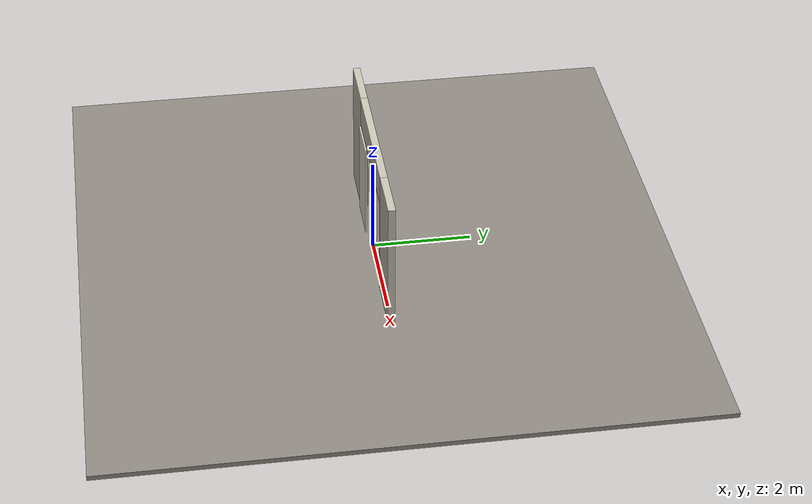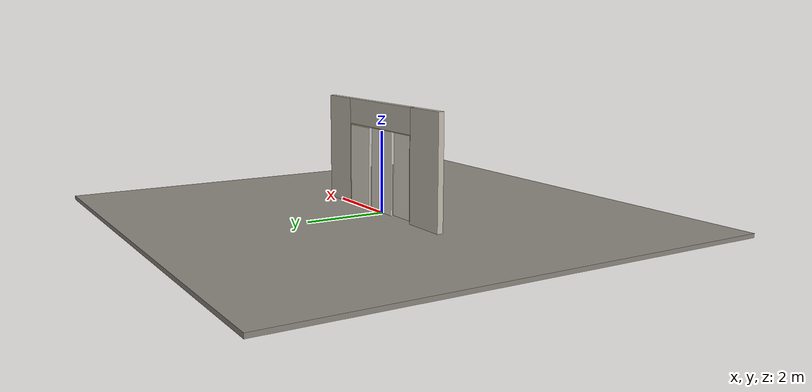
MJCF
<?xml version="1.0" ?>
<mujoco model="db0649_sliding_bypass_minimal">
  <compiler angle="radian" meshdir="../../hardware" texturedir="../../textures" autolimits="true" inertiafromgeom="false"/>
  <option timestep="0.002" integrator="implicitfast" cone="elliptic" impratio="10" noslip_iterations="3">
    <flag multiccd="enable"/>
  </option>
  <size memory="16M"/>
  <default>
    <geom condim="4" solref="0.005 1" solimp="0.95 0.99 0.001"/>
    <joint solreflimit="0.005 1" solimplimit="0.95 0.99 0.001"/>
    <tendon solreflimit="0.005 1"/>
    <equality solref="0.002 1"/>
  </default>
  <visual>
    <headlight ambient="0.4 0.4 0.4" diffuse="0.7 0.7 0.7" specular="0.2 0.2 0.2"/>
    <quality shadowsize="4096"/>
    <map znear="0.01" zfar="60"/>
  </visual>
  <asset>
    <material name="mat_floor" rgba="0.55 0.53 0.5 1" specular="0.2" shininess="0.15" reflectance="0"/>
    <material name="mat_wall" rgba="0.78 0.76 0.7 1" specular="0.2" shininess="0.1" reflectance="0"/>
    <material name="mat_frame" rgba="0.82 0.7 0.5 1" specular="0.2" shininess="0.45" reflectance="0"/>
    <material name="mat_track" rgba="0.8 0.81 0.83 1" specular="0.8" shininess="0.6" reflectance="0.4"/>
    <material name="mat_leaf_0" rgba="0.9 0.88 0.82 1" specular="0.2" shininess="0.41" reflectance="0"/>
    <material name="mat_roller" rgba="0.65 0.66 0.68 1" specular="0.74" shininess="0.5" reflectance="0.36"/>
    <material name="mat_op_nickel_satin" rgba="0.72 0.7 0.66 1" specular="0.8" shininess="0.65" reflectance="0.4"/>
    <material name="mat_leaf_1" rgba="0.9 0.88 0.82 1" specular="0.2" shininess="0.41" reflectance="0"/>
    <material name="mat_leaf_2" rgba="0.9 0.88 0.82 1" specular="0.2" shininess="0.41" reflectance="0"/>
    <material name="mat_hook" rgba="0.75 0.76 0.77 1" specular="0.8" shininess="0.65" reflectance="0.4"/>
    <texture name="skybox" type="skybox" builtin="gradient" rgb1="0.6 0.7 0.85" rgb2="0.9 0.92 0.95" width="256" height="256"/>
  </asset>
  <worldbody>
    <light name="sun" pos="1.5 -2.5 4" dir="-0.3 0.5 -0.8" directional="true" diffuse="0.8 0.8 0.8" specular="0.3 0.3 0.3" castshadow="true"/>
    <light name="fill" pos="-1.5 2.5 3" dir="0.3 -0.5 -0.7" directional="true" diffuse="0.35 0.35 0.4" castshadow="false"/>
    <camera name="robot_view" pos="0 -3.14875 1.90765" xyaxes="1 0 0 0 0.26963 0.962964" fovy="52"/>
    <camera name="far_view" pos="0 3.14875 1.90765" xyaxes="-1 0 0 0 -0.26963 0.962964" fovy="52"/>
    <camera name="iso" pos="2.39305 -2.64495 2.41145" xyaxes="0.741536 0.670913 0 -0.242917 0.268487 0.932151" fovy="46"/>
    <camera name="detail_handle" pos="-1.073 -0.9025 1.28" xyaxes="0.97561 0.219512 0 -0.070934 0.315262 0.94635" fovy="38"/>
    <geom name="floor" type="box" size="6 6 0.05" pos="0 0 -0.05" material="mat_floor" group="0" contype="1" conaffinity="1" friction="0.8 0.005 0.0001" density="2400"/>
    <geom name="wall_left" type="box" size="0.5675 0.0725 1.35" pos="-1.9325 0 1.35" material="mat_wall" group="0" contype="1" conaffinity="1" friction="0.6 0.005 0.0001" density="800"/>
    <geom name="wall_right" type="box" size="0.5375 0.0725 1.35" pos="1.9625 0 1.35" material="mat_wall" group="0" contype="1" conaffinity="1" friction="0.6 0.005 0.0001" density="800"/>
    <geom name="wall_header" type="box" size="1.395 0.0725 0.3145" pos="0.03 0 2.3855" material="mat_wall" group="0" contype="1" conaffinity="1" friction="0.6 0.005 0.0001" density="800"/>
    <geom name="jamb_l" type="box" size="0.0095 0.0725 1.026" pos="-1.3555 0 1.026" material="mat_frame" group="0" contype="1" conaffinity="1" friction="0.6 0.005 0.0001" density="300"/>
    <geom name="jamb_head" type="box" size="1.365 0.0725 0.0095" pos="0 0 2.0615" material="mat_frame" group="0" contype="1" conaffinity="1" friction="0.6 0.005 0.0001" density="300"/>
    <geom name="jamb_latch_0" type="box" size="0.0395 0.0725 1.026" pos="1.3855 0 1.026" material="mat_frame" group="0" contype="1" conaffinity="1" friction="0.6 0.005 0.0001" density="300"/>
    <site name="approach_point" pos="0 -1.5 0" quat="1 0 0 0" size="0.05" rgba="0.2 0.9 0.2 0.5" group="4"/>
    <site name="goal_point" pos="0 1.5 0" quat="1 0 0 0" size="0.05" rgba="0.2 0.9 0.2 0.5" group="4"/>
    <site name="door_plane_center" pos="0 0 1.026" quat="1 0 0 0" size="0.02" rgba="0.2 0.9 0.2 0.5" group="4"/>
    <body name="leaf_0" pos="-0.886 -0.085 0">
      <inertial pos="-0.000137 -0.000007 1.02799" mass="13.442381" quat="0.499995 0.500012 -0.499987 0.500006" diaginertia="0.937510292 4.624979284 5.559742864"/>
      <joint name="leaf_0_slide" type="slide" axis="1 0 0" limited="true" range="0 1.752" damping="2.678786" frictionloss="2.076864" armature="0.5"/>
      <geom name="leaf_0_slab" type="box" size="0.457 0.0175 1.016" pos="0 0 1.028" material="mat_leaf_0" group="0" contype="1" conaffinity="1" friction="0.35 0.005 0.0001" density="1"/>
      <geom name="leaf_0_pull_n" type="box" size="0.025 0.0005 0.05" pos="-0.367 -0.018 1" material="mat_op_nickel_satin" group="1" contype="0" conaffinity="0" density="1000"/>
      <site name="leaf_0_pull_grip_n" pos="-0.367 -0.0175 1" quat="1 0 0 0" size="0.012" rgba="0.2 0.9 0.2 0.5" group="4"/>
      <site name="leaf_0_edge_mid" pos="-0.457 0 1.028" quat="1 0 0 0" size="0.02" rgba="0.2 0.9 0.2 0.5" group="4"/>
    </body>
    <body name="leaf_1" pos="0 0 0">
      <inertial pos="0.000137 -0.000007 1.02799" mass="13.442381" quat="0.500006 0.499987 -0.500012 0.499995" diaginertia="0.937510292 4.624979284 5.559742864"/>
      <joint name="leaf_1_slide" type="slide" axis="-1 0 0" limited="true" range="0 0.866" damping="2.678786" frictionloss="2.076864" armature="0.5"/>
      <geom name="leaf_1_slab" type="box" size="0.457 0.0175 1.016" pos="0 0 1.028" material="mat_leaf_1" group="0" contype="1" conaffinity="1" friction="0.35 0.005 0.0001" density="1"/>
      <geom name="leaf_1_pull_n" type="box" size="0.025 0.0005 0.05" pos="0.367 -0.018 1" material="mat_op_nickel_satin" group="1" contype="0" conaffinity="0" density="1000"/>
      <site name="leaf_1_pull_grip_n" pos="0.367 -0.0175 1" quat="1 0 0 0" size="0.012" rgba="0.2 0.9 0.2 0.5" group="4"/>
      <site name="leaf_1_edge_mid" pos="0.457 0 1.028" quat="1 0 0 0" size="0.02" rgba="0.2 0.9 0.2 0.5" group="4"/>
    </body>
    <body name="leaf_2" pos="0.886 0.085 0">
      <inertial pos="-0.000137 -0.000007 1.02799" mass="13.442381" quat="0.499995 0.500012 -0.499987 0.500006" diaginertia="0.937510292 4.624979284 5.559742864"/>
      <joint name="leaf_2_slide" type="slide" axis="-1 0 0" limited="true" range="0 1.752" damping="2.678786" frictionloss="2.076864" armature="0.5"/>
      <geom name="leaf_2_slab" type="box" size="0.457 0.0175 1.016" pos="0 0 1.028" material="mat_leaf_2" group="0" contype="1" conaffinity="1" friction="0.35 0.005 0.0001" density="1"/>
      <geom name="leaf_2_pull_n" type="box" size="0.025 0.0005 0.05" pos="-0.367 -0.018 1" material="mat_op_nickel_satin" group="1" contype="0" conaffinity="0" density="1000"/>
      <site name="leaf_2_pull_grip_n" pos="-0.367 -0.0175 1" quat="1 0 0 0" size="0.012" rgba="0.2 0.9 0.2 0.5" group="4"/>
      <site name="leaf_2_edge_mid" pos="-0.457 0 1.028" quat="1 0 0 0" size="0.02" rgba="0.2 0.9 0.2 0.5" group="4"/>
    </body>
  </worldbody>
  <sensor>
    <jointpos name="leaf_0_slide_pos" joint="leaf_0_slide"/>
    <jointvel name="leaf_0_slide_vel" joint="leaf_0_slide"/>
    <jointpos name="leaf_1_slide_pos" joint="leaf_1_slide"/>
    <jointvel name="leaf_1_slide_vel" joint="leaf_1_slide"/>
    <jointpos name="leaf_2_slide_pos" joint="leaf_2_slide"/>
    <jointvel name="leaf_2_slide_vel" joint="leaf_2_slide"/>
  </sensor>
</mujoco>
